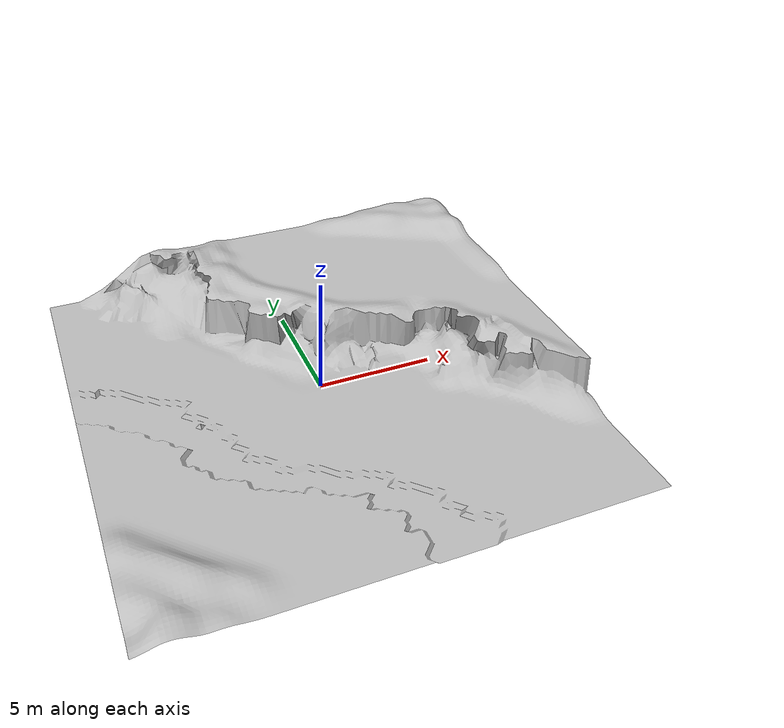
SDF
<?xml version="1.0"?>
<sdf version="1.7">
  <model name="test">
    <static>true</static>
    <link name="testlink">
      <visual name="mesh_visual">
        <geometry>
          <mesh>
            <uri>model.dae</uri>
          </mesh>
        </geometry>
      </visual>
      <collision name="collision">
        <geometry><mesh><uri>model.dae</uri></mesh></geometry>
      </collision>
    </link>
  </model>
</sdf>
